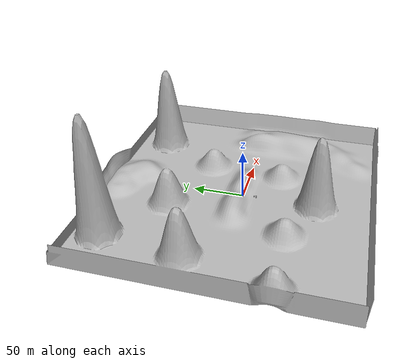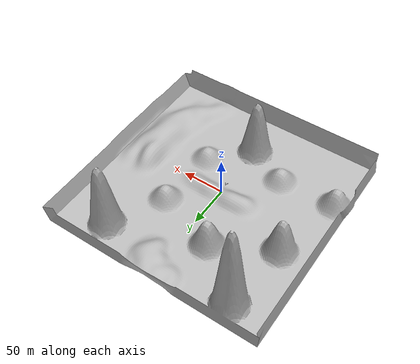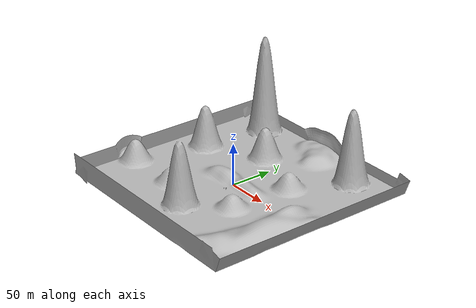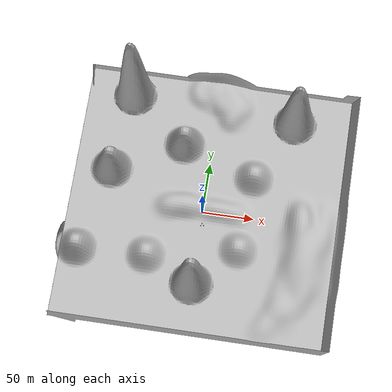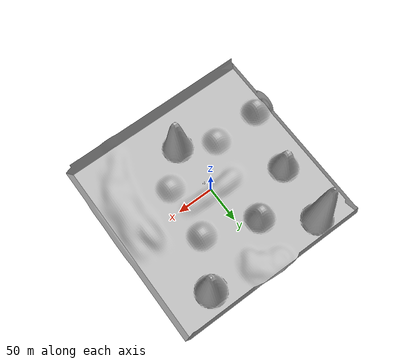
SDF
<sdf version='1.10'>
  <world name='empty'>
    <physics name='1ms' type='ignored'>
      <max_step_size>0.001</max_step_size>
      <real_time_factor>1</real_time_factor>
      <real_time_update_rate>1000</real_time_update_rate>
    </physics>
    <plugin name='gz::sim::systems::Physics' filename='gz-sim-physics-system'/>
    <plugin name='gz::sim::systems::UserCommands' filename='gz-sim-user-commands-system'/>
    <plugin name='gz::sim::systems::SceneBroadcaster' filename='gz-sim-scene-broadcaster-system'/>
    <scene>
      <grid>false</grid>
      <ambient>0.400000006 0.400000006 0.400000006 1</ambient>
      <background>0.699999988 0.699999988 0.699999988 1</background>
      <shadows>true</shadows>
    </scene>
    <gravity>0 0 -9.8000000000000007</gravity>
    <magnetic_field>5.5644999999999998e-06 2.2875799999999999e-05 -4.2388400000000002e-05</magnetic_field>
    <atmosphere type='adiabatic'/>
    <model name='WorldEnvirement'>
      <static>true</static>
      <pose>0 0 0 0 0 0</pose>
      <link name='link'>
        <collision name='collision'>
          <geometry>
            <mesh>
              <scale>20 20 20</scale>
              <uri>file:///home/ihackerubuntu/ProjectFiles/Practice/Practice_ROS2/ros2_ws_2/install/robot_thermal_camera_sensor/share/robot_thermal_camera_sensor/worlds/wld.dae</uri>
            </mesh>
          </geometry>
        </collision>
        <visual name='visual'>
          <geometry>
            <mesh>
              <scale>20 20 20</scale>
              <uri>file:///home/ihackerubuntu/ProjectFiles/Practice/Practice_ROS2/ros2_ws_2/install/robot_thermal_camera_sensor/share/robot_thermal_camera_sensor/worlds/wld.dae</uri>
            </mesh>
          </geometry>
        </visual>
        <pose>0 0 0 0 0 0</pose>
        <inertial>
          <pose>0 0 0 0 0 0</pose>
          <mass>1</mass>
          <inertia>
            <ixx>1</ixx>
            <ixy>0</ixy>
            <ixz>0</ixz>
            <iyy>1</iyy>
            <iyz>0</iyz>
            <izz>1</izz>
          </inertia>
        </inertial>
        <enable_wind>false</enable_wind>
      </link>
      <self_collide>false</self_collide>
    </model>
    <model name='box'>
      <pose>1.2831825940713151 -11.370506703800061 0.51290063397831076 0.02147920476438149 -0.00027539617266666549 -0.00040760201749998466</pose>
      <link name='box_link'>
        <inertial>
          <inertia>
            <ixx>0.16666</ixx>
            <ixy>0</ixy>
            <ixz>0</ixz>
            <iyy>0.16666</iyy>
            <iyz>0</iyz>
            <izz>0.16666</izz>
          </inertia>
          <mass>1</mass>
          <pose>0 0 0 0 0 0</pose>
        </inertial>
        <collision name='box_collision'>
          <geometry>
            <box>
              <size>1 1 1</size>
            </box>
          </geometry>
          <surface>
            <friction>
              <ode/>
            </friction>
            <bounce/>
            <contact/>
          </surface>
        </collision>
        <visual name='box_visual'>
          <geometry>
            <box>
              <size>1 1 1</size>
            </box>
          </geometry>
          <material>
            <ambient>0.300000012 0.300000012 0.300000012 1</ambient>
            <diffuse>0.699999988 0.699999988 0.699999988 1</diffuse>
            <specular>1 1 1 1</specular>
          </material>
        </visual>
        <pose>0 0 0 0 0 0</pose>
        <enable_wind>false</enable_wind>
      </link>
      <static>false</static>
      <self_collide>false</self_collide>
    </model>
    <model name='cone'>
      <pose>3.0255438165856257 -12.994339617345011 0.50135488278576223 0.0019668267459736041 -0.00071781556794168165 -3.4005985743459238e-06</pose>
      <link name='cone_link'>
        <inertial>
          <inertia>
            <ixx>0.074999999999999997</ixx>
            <ixy>0</ixy>
            <ixz>0</ixz>
            <iyy>0.074999999999999997</iyy>
            <iyz>0</iyz>
            <izz>0.074999999999999997</izz>
          </inertia>
          <mass>1</mass>
          <pose>0 0 0 0 0 0</pose>
        </inertial>
        <collision name='cone_collision'>
          <geometry>
            <cone>
              <radius>0.5</radius>
              <length>1</length>
            </cone>
          </geometry>
          <surface>
            <friction>
              <ode/>
            </friction>
            <bounce/>
            <contact/>
          </surface>
        </collision>
        <visual name='cone_visual'>
          <geometry>
            <cone>
              <radius>0.5</radius>
              <length>1</length>
            </cone>
          </geometry>
          <material>
            <ambient>0.300000012 0.300000012 0.300000012 1</ambient>
            <diffuse>0.699999988 0.699999988 0.699999988 1</diffuse>
            <specular>1 1 1 1</specular>
          </material>
        </visual>
        <pose>0 0 0 0 0 0</pose>
        <enable_wind>false</enable_wind>
      </link>
      <static>false</static>
      <self_collide>false</self_collide>
    </model>
    <model name='cylinder'>
      <pose>0.20675132992726386 -13.539729919018669 0.50024170194600093 0.00050316376337385853 7.9242187927571147e-17 2.8655801669184832e-19</pose>
      <link name='cylinder_link'>
        <inertial>
          <inertia>
            <ixx>0.14580000000000001</ixx>
            <ixy>0</ixy>
            <ixz>0</ixz>
            <iyy>0.14580000000000001</iyy>
            <iyz>0</iyz>
            <izz>0.125</izz>
          </inertia>
          <mass>1</mass>
          <pose>0 0 0 0 0 0</pose>
        </inertial>
        <collision name='cylinder_collision'>
          <geometry>
            <cylinder>
              <radius>0.5</radius>
              <length>1</length>
            </cylinder>
          </geometry>
          <surface>
            <friction>
              <ode/>
            </friction>
            <bounce/>
            <contact/>
          </surface>
        </collision>
        <visual name='cylinder_visual'>
          <geometry>
            <cylinder>
              <radius>0.5</radius>
              <length>1</length>
            </cylinder>
          </geometry>
          <material>
            <ambient>0.300000012 0.300000012 0.300000012 1</ambient>
            <diffuse>0.699999988 0.699999988 0.699999988 1</diffuse>
            <specular>1 1 1 1</specular>
          </material>
        </visual>
        <pose>0 0 0 0 0 0</pose>
        <enable_wind>false</enable_wind>
      </link>
      <static>false</static>
      <self_collide>false</self_collide>
    </model>
    <light name='sun' type='directional'>
      <pose>0 0 100 0 0 0</pose>
      <cast_shadows>true</cast_shadows>
      <intensity>1</intensity>
      <direction>0 1 1</direction>
      <diffuse>0.800000012 0.800000012 0.800000012 1</diffuse>
      <specular>0.100001 0.100001 0.100001 1</specular>
      <attenuation>
        <range>1000</range>
        <linear>1</linear>
        <constant>0.90000000000000002</constant>
        <quadratic>0.001</quadratic>
      </attenuation>
      <spot>
        <inner_angle>0</inner_angle>
        <outer_angle>0</outer_angle>
        <falloff>0</falloff>
      </spot>
    </light>
  </world>
</sdf>
